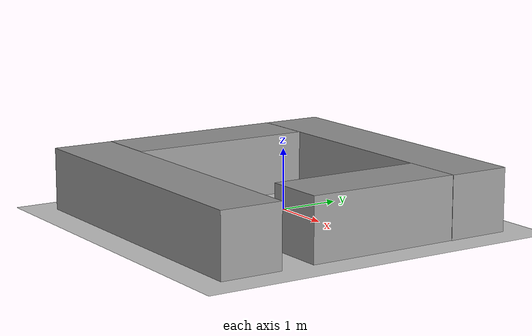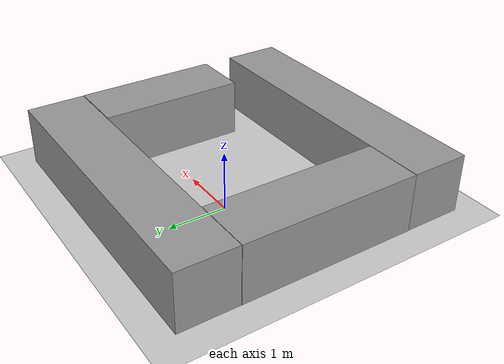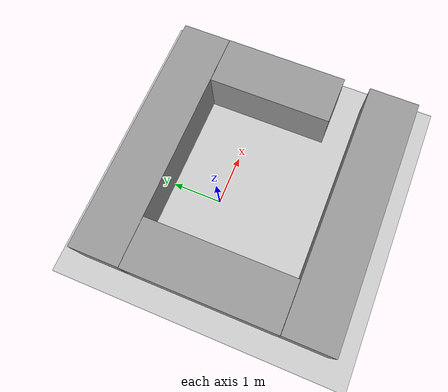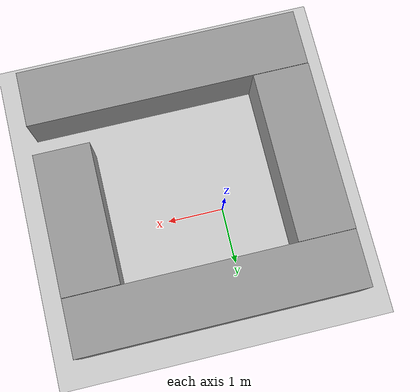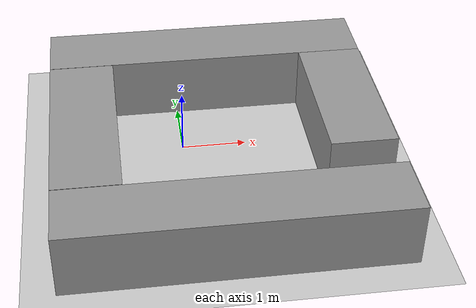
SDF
<sdf version="1.7">
 <world name="default">
  <plugin name="ros_link_attacher_plugin" filename="libgazebo_ros_link_attacher.so"/>
  <scene><ambient>0.4 0.4 0.4 1</ambient><background>0.7 0.7 0.7 1</background><shadows>1</shadows></scene>
  <light name="sun" type="directional">
   <pose>0 0 10 0 -0 0</pose>
   <diffuse>0.8 0.8 0.8 1</diffuse>
   <specular>0.2 0.2 0.2 1</specular>
   <attenuation>
    <range>1000</range>
    <constant>0.9</constant>
    <linear>0.01</linear>
    <quadratic>0.001</quadratic>
   </attenuation>
   <direction>-0.5 0.1 -0.9</direction>
   <spot><inner_angle>0</inner_angle><outer_angle>0</outer_angle><falloff>0</falloff></spot>
  </light>
  <model name="ground_plane">
   <static>1</static>
   <link name="link">
    <collision name="collision">
     <geometry><plane><normal>0 0 1</normal><size>100 100</size></plane></geometry>
     <surface>
      <contact><collide_bitmask>65535</collide_bitmask></contact>
      <friction><ode><mu>100</mu><mu2>50</mu2></ode></friction>
     </surface>
    </collision>
    <visual name="visual">
     <cast_shadows>0</cast_shadows>
     <geometry><plane><normal>0 0 1</normal><size>100 100</size></plane></geometry>
     <material>
      <script><uri>file://media/materials/scripts/gazebo.material</uri><name>Gazebo/Grey</name></script>
     </material>
    </visual>
   </link>
  </model>
  <physics type="ode">
   <real_time_update_rate>1000</real_time_update_rate>
   <max_step_size>0.001</max_step_size>
   <real_time_factor>1</real_time_factor>
   <ode>
    <solver>
     <type>quick</type>
     <iters>150</iters>
     <precon_iters>0</precon_iters>
     <sor>1.4</sor>
     <use_dynamic_moi_rescaling>1</use_dynamic_moi_rescaling>
    </solver>
    <constraints>
     <cfm>1e-05</cfm>
     <erp>0.2</erp>
     <contact_max_correcting_vel>2000</contact_max_correcting_vel>
     <contact_surface_layer>0.01</contact_surface_layer>
    </constraints>
   </ode>
  </physics>
  <gravity>0 0 -9.8</gravity>
  <magnetic_field>6e-06 2.3e-05 -4.2e-05</magnetic_field>
  <atmosphere type="adiabatic"/>
  <spherical_coordinates>
   <surface_model>EARTH_WGS84</surface_model>
   <latitude_deg>0</latitude_deg>
   <longitude_deg>0</longitude_deg>
   <elevation>0</elevation>
   <heading_deg>0</heading_deg>
  </spherical_coordinates>
  <model name="unit_box">
   <pose>0.503119 1.50427 0.497816 0 0.000868 0</pose>
   <link name="link">
    <inertial>
     <mass>1</mass>
     <inertia>
      <ixx>0.166667</ixx>
      <ixy>0</ixy>
      <ixz>0</ixz>
      <iyy>0.166667</iyy>
      <iyz>0</iyz>
      <izz>0.166667</izz>
     </inertia>
    </inertial>
    <collision name="collision"><geometry><box><size>5.03155 1 1</size></box></geometry></collision>
    <visual name="visual">
     <geometry><box><size>5.03155 1 1</size></box></geometry>
     <material>
      <script><name>Gazebo/Grey</name><uri>file://media/materials/scripts/gazebo.material</uri></script>
     </material>
    </visual>
   </link>
  </model>
  <model name="unit_box_0">
   <pose>-1.51575 -0.509534 0.5 0 -0 0</pose>
   <link name="link">
    <inertial>
     <mass>1</mass>
     <inertia>
      <ixx>0.166667</ixx>
      <ixy>0</ixy>
      <ixz>0</ixz>
      <iyy>0.166667</iyy>
      <iyz>0</iyz>
      <izz>0.166667</izz>
     </inertia>
    </inertial>
    <collision name="collision"><geometry><box><size>1 3.01936 1</size></box></geometry></collision>
    <visual name="visual">
     <geometry><box><size>1 3.01936 1</size></box></geometry>
     <material>
      <script><name>Gazebo/Grey</name><uri>file://media/materials/scripts/gazebo.material</uri></script>
     </material>
    </visual>
   </link>
  </model>
  <model name="unit_box_clone">
   <pose>0.505082 -2.5251 0.497816 0 0.000868 0</pose>
   <link name="link">
    <inertial>
     <mass>1</mass>
     <inertia>
      <ixx>0.166667</ixx>
      <ixy>0</ixy>
      <ixz>0</ixz>
      <iyy>0.166667</iyy>
      <iyz>0</iyz>
      <izz>0.166667</izz>
     </inertia>
    </inertial>
    <collision name="collision"><geometry><box><size>5.03155 1 1</size></box></geometry></collision>
    <visual name="visual">
     <geometry><box><size>5.03155 1 1</size></box></geometry>
     <material>
      <script><name>Gazebo/Grey</name><uri>file://media/materials/scripts/gazebo.material</uri></script>
     </material>
    </visual>
   </link>
  </model>
  <model name="unit_box_1">
   <pose>2.51956 -0.248082 0.499938 5e-05 -0 0</pose>
   <link name="link">
    <inertial>
     <mass>1</mass>
     <inertia>
      <ixx>0.166667</ixx>
      <ixy>0</ixy>
      <ixz>0</ixz>
      <iyy>0.166667</iyy>
      <iyz>0</iyz>
      <izz>0.166667</izz>
     </inertia>
    </inertial>
    <collision name="collision"><geometry><box><size>1 2.49164 1</size></box></geometry></collision>
    <visual name="visual">
     <geometry><box><size>1 2.49164 1</size></box></geometry>
     <material>
      <script><name>Gazebo/Grey</name><uri>file://media/materials/scripts/gazebo.material</uri></script>
     </material>
    </visual>
   </link>
  </model>
 </world>
</sdf>
